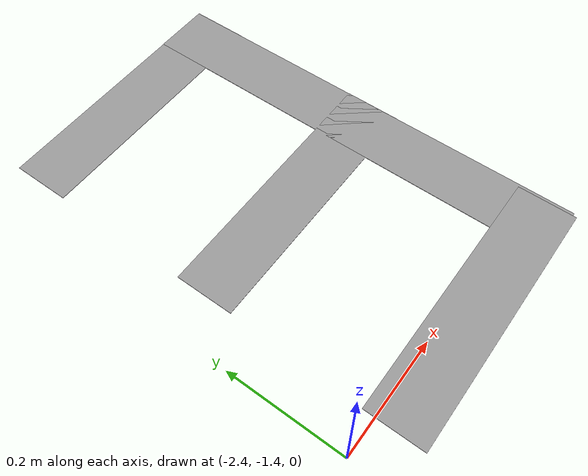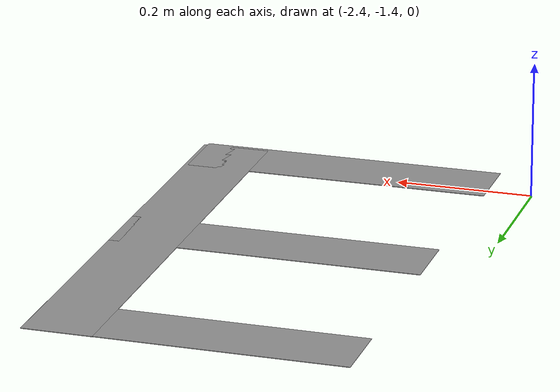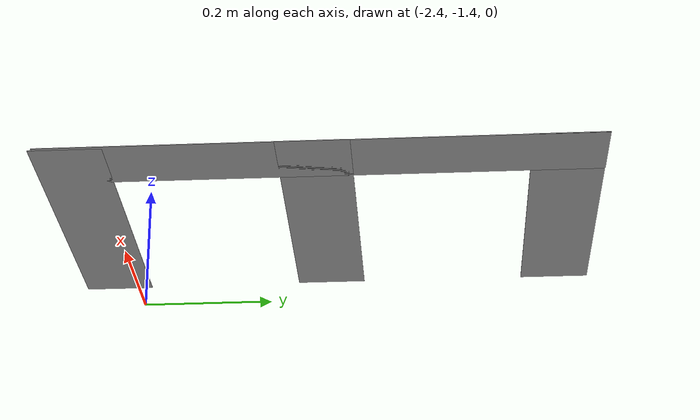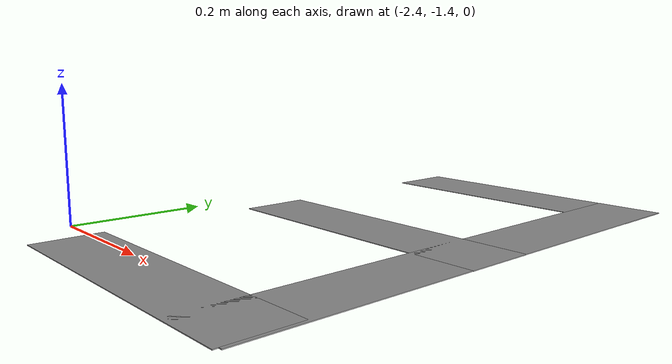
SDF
<?xml version='1.0'?>
<sdf version='1.7'>
  <model name='three'>
    <pose>-1.16714 -0.739726 0 0 -0 0</pose>
    <link name='Wall_38'>
      <collision name='Wall_38_Collision'>
        <geometry>
          <box>
            <size>0.761122 0.1 0.001</size>
          </box>
        </geometry>
        <pose>0 0 0.0005 0 -0 0</pose>
      </collision>
      <visual name='Wall_38_Visual'>
        <pose>0 0 0.0005 0 -0 0</pose>
        <geometry>
          <box>
            <size>0.761122 0.1 0.001</size>
          </box>
        </geometry>
        <material>
          <script>
            <uri>file://media/materials/scripts/gazebo.material</uri>
            <name>Gazebo/Grey</name>
          </script>
          <ambient>1 1 1 1</ambient>
        </material>
        <meta>
          <layer>0</layer>
        </meta>
      </visual>
      <pose>-0.762227 -0.352915 0 0 -0 -1.5708</pose>
    </link>
    <link name='Wall_45'>
      <collision name='Wall_45_Collision'>
        <geometry>
          <box>
            <size>0.45 0.1 0.001</size>
          </box>
        </geometry>
        <pose>0 0 0.0005 0 -0 0</pose>
      </collision>
      <visual name='Wall_45_Visual'>
        <pose>0 0 0.0005 0 -0 0</pose>
        <geometry>
          <box>
            <size>0.45 0.1 0.001</size>
          </box>
        </geometry>
        <material>
          <script>
            <uri>file://media/materials/scripts/gazebo.material</uri>
            <name>Gazebo/Grey</name>
          </script>
          <ambient>1 1 1 1</ambient>
        </material>
        <meta>
          <layer>0</layer>
        </meta>
      </visual>
      <pose>-0.942142 -0.689726 0 0 -0 3.14159</pose>
    </link>
    <link name='Wall_48'>
      <collision name='Wall_48_Collision'>
        <geometry>
          <box>
            <size>0.45 0.1 0.001</size>
          </box>
        </geometry>
        <pose>0 0 0.0005 0 -0 0</pose>
      </collision>
      <visual name='Wall_48_Visual'>
        <pose>0 0 0.0005 0 -0 0</pose>
        <geometry>
          <box>
            <size>0.45 0.1 0.001</size>
          </box>
        </geometry>
        <material>
          <script>
            <uri>file://media/materials/scripts/gazebo.material</uri>
            <name>Gazebo/Grey</name>
          </script>
          <ambient>1 1 1 1</ambient>
        </material>
        <meta>
          <layer>0</layer>
        </meta>
      </visual>
      <pose>-0.936849 -0.361505 0 0 -0 0</pose>
    </link>
    <link name='Wall_50'>
      <collision name='Wall_50_Collision'>
        <geometry>
          <box>
            <size>0.45 0.1 0.001</size>
          </box>
        </geometry>
        <pose>0 0 0.0005 0 -0 0</pose>
      </collision>
      <visual name='Wall_50_Visual'>
        <pose>0 0 0.0005 0 -0 0</pose>
        <geometry>
          <box>
            <size>0.45 0.1 0.001</size>
          </box>
        </geometry>
        <material>
          <script>
            <uri>file://media/materials/scripts/gazebo.material</uri>
            <name>Gazebo/Grey</name>
          </script>
          <ambient>1 1 1 1</ambient>
        </material>
        <meta>
          <layer>0</layer>
        </meta>
      </visual>
      <pose>-0.93671 -0.022937 0 0 -0 0</pose>
    </link>
    <static>1</static>
  </model>
</sdf>
